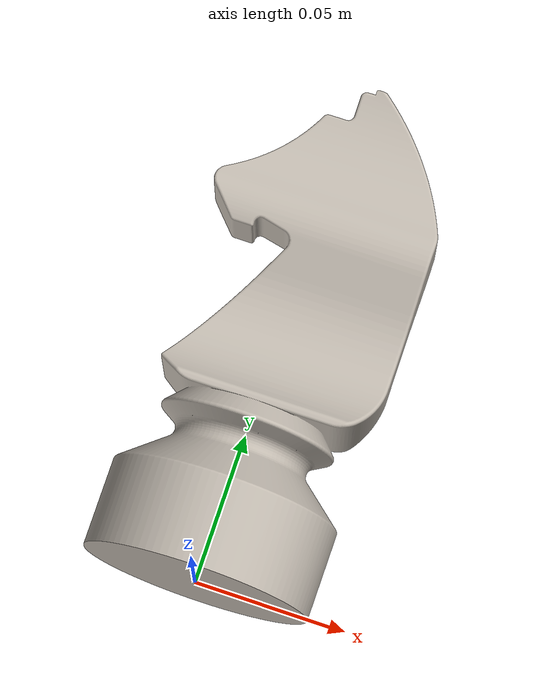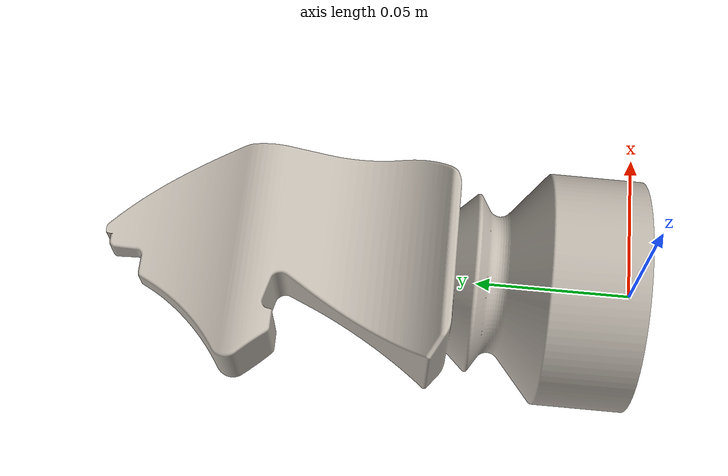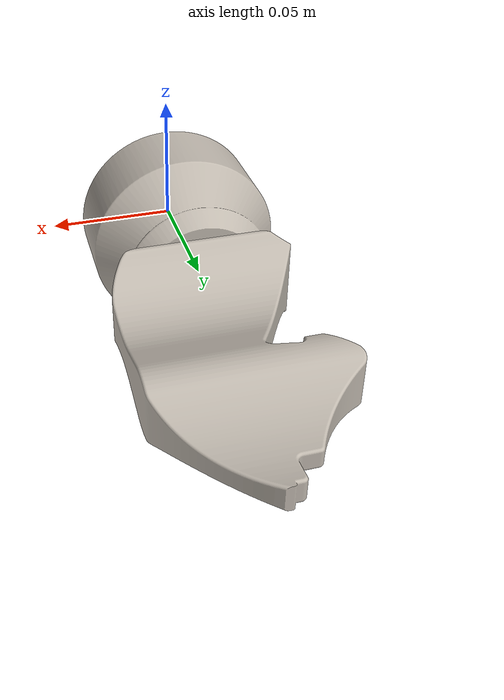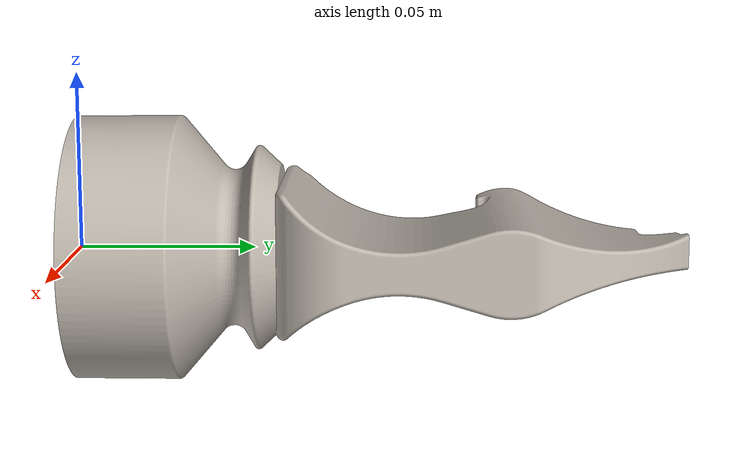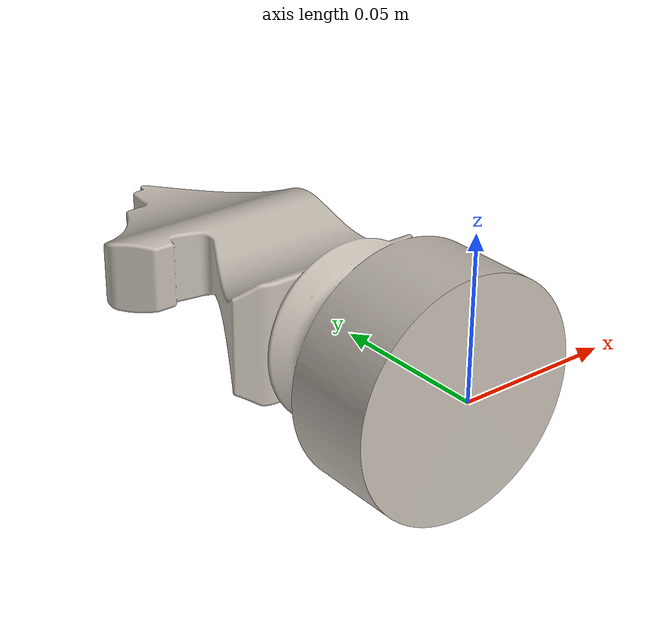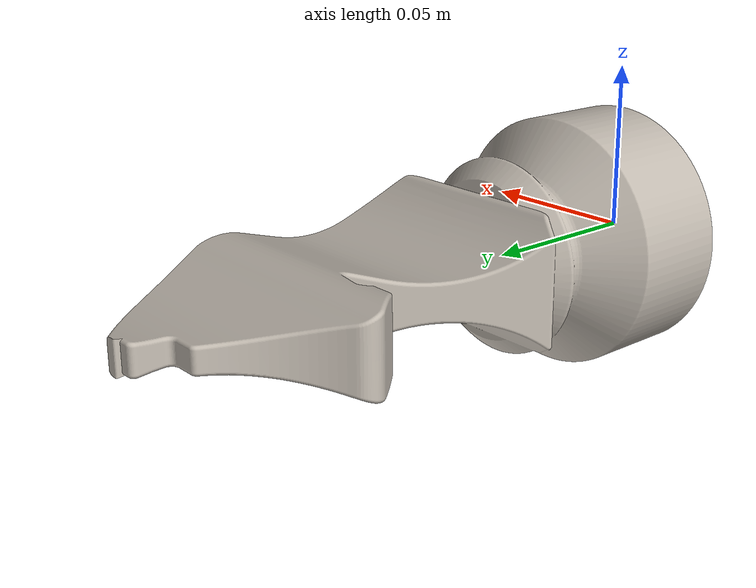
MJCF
<mujoco model="knight">
  <asset>
    <mesh file="meshes/knight.stl" name="knight_mesh" scale="0.001 0.001 0.001"/>
    <texture file="../textures/chess_texture.png" type="2d" name="tex-knight" />
    <material name="mat-knight" reflectance="0.2" texrepeat="1 1" texture="tex-knight" texuniform="true"/>
  </asset>
  <worldbody>
    <body>
      <body name="object">
        <geom pos="0 0 0" mesh="knight_mesh" type="mesh" solimp="0.998 0.998 0.001" solref="0.001 1" density="5000" friction="0.5 0.3 0.1" material="mat-knight" group="0" condim="4"/>
      </body>
      <site rgba="0 0 0 0" size="0.005" pos="0 0 0" name="knight_site"/>
    </body>
  </worldbody>
</mujoco>
